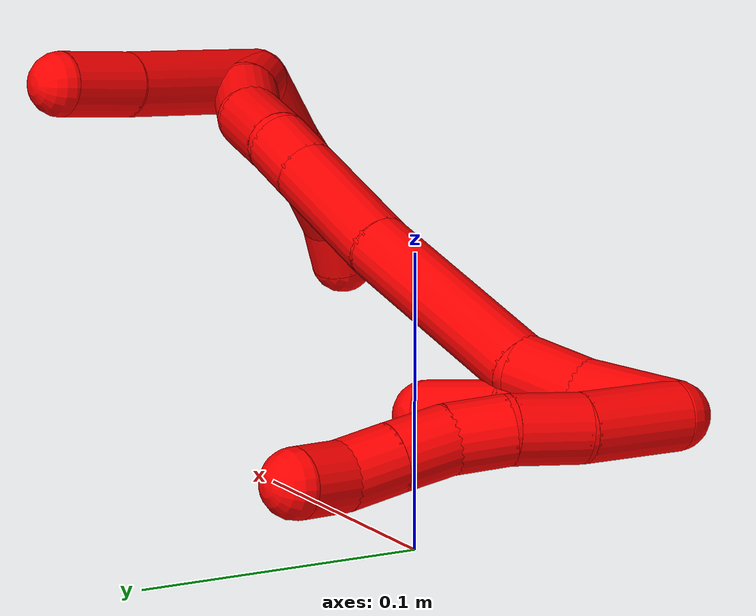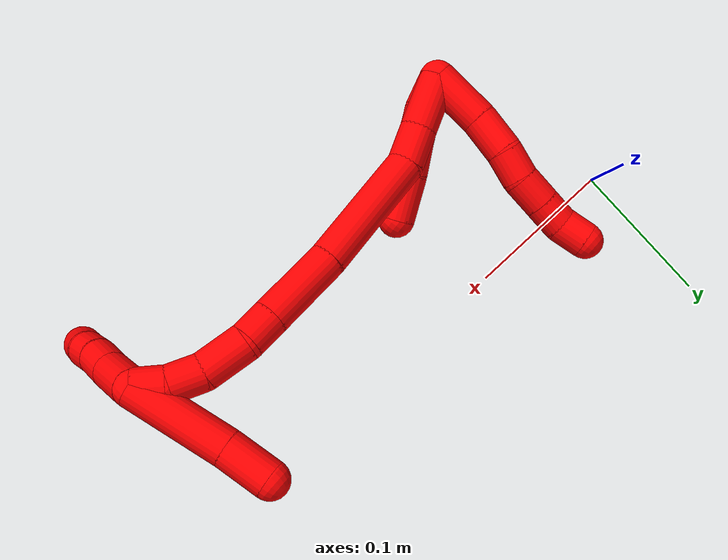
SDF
<sdf version="1.7">
 <world name="default">
  <model name="2">
   <static>0</static>
   <link name="2">
    <collision name="collision-cylinder-e_1_2_8">
     <pose>0.000974 -0.001153 -0.019559 3.08273 0.049694 1.40224</pose>
     <geometry><cylinder><radius>0.0125</radius><length>0.039233</length></cylinder></geometry>
     <surface>
      <friction><ode><mu>1.16</mu><mu2>1.16</mu2><slip1>0</slip1><slip2>0</slip2></ode></friction>
      <contact><ode><kp>1e+06</kp><kd>1</kd><max_vel>0</max_vel><min_depth>0.001</min_depth></ode></contact>
     </surface>
    </collision>
    <visual name="visual-cylinder-e_1_2_8">
     <pose>0.000974 -0.001153 -0.019559 3.08273 0.049694 1.40224</pose>
     <geometry><cylinder><radius>0.0125</radius><length>0.039233</length></cylinder></geometry>
     <material><ambient>1 0 0 1</ambient></material>
    </visual>
    <collision name="collision-cylinder-e_2_8_9">
     <pose>0.004702 -0.002875 -0.052512 3.0991 0.202523 2.72928</pose>
     <geometry><cylinder><radius>0.0125</radius><length>0.027374</length></cylinder></geometry>
     <surface>
      <friction><ode><mu>1.16</mu><mu2>1.16</mu2><slip1>0</slip1><slip2>0</slip2></ode></friction>
      <contact><ode><kp>1e+06</kp><kd>1</kd><max_vel>0</max_vel><min_depth>0.001</min_depth></ode></contact>
     </surface>
    </collision>
    <visual name="visual-cylinder-e_2_8_9">
     <pose>0.004702 -0.002875 -0.052512 3.0991 0.202523 2.72928</pose>
     <geometry><cylinder><radius>0.0125</radius><length>0.027374</length></cylinder></geometry>
     <material><ambient>1 0 0 1</ambient></material>
    </visual>
    <collision name="collision-cylinder-e_3_9_10">
     <pose>0.010183 -0.005819 -0.076003 2.91055 0.257233 1.67905</pose>
     <geometry><cylinder><radius>0.0125</radius><length>0.021448</length></cylinder></geometry>
     <surface>
      <friction><ode><mu>1.16</mu><mu2>1.16</mu2><slip1>0</slip1><slip2>0</slip2></ode></friction>
      <contact><ode><kp>1e+06</kp><kd>1</kd><max_vel>0</max_vel><min_depth>0.001</min_depth></ode></contact>
     </surface>
    </collision>
    <visual name="visual-cylinder-e_3_9_10">
     <pose>0.010183 -0.005819 -0.076003 2.91055 0.257233 1.67905</pose>
     <geometry><cylinder><radius>0.0125</radius><length>0.021448</length></cylinder></geometry>
     <material><ambient>1 0 0 1</ambient></material>
    </visual>
    <collision name="collision-cylinder-e_4_10_11">
     <pose>0.013217 -0.010912 -0.096619 2.88878 0.02812 0.220388</pose>
     <geometry><cylinder><radius>0.0125</radius><length>0.02174</length></cylinder></geometry>
     <surface>
      <friction><ode><mu>1.16</mu><mu2>1.16</mu2><slip1>0</slip1><slip2>0</slip2></ode></friction>
      <contact><ode><kp>1e+06</kp><kd>1</kd><max_vel>0</max_vel><min_depth>0.001</min_depth></ode></contact>
     </surface>
    </collision>
    <visual name="visual-cylinder-e_4_10_11">
     <pose>0.013217 -0.010912 -0.096619 2.88878 0.02812 0.220388</pose>
     <geometry><cylinder><radius>0.0125</radius><length>0.02174</length></cylinder></geometry>
     <material><ambient>1 0 0 1</ambient></material>
    </visual>
    <collision name="collision-cylinder-e_5_11_12">
     <pose>0.013751 -0.016299 -0.116855 2.87346 0.02267 0.167689</pose>
     <geometry><cylinder><radius>0.0125</radius><length>0.020157</length></cylinder></geometry>
     <surface>
      <friction><ode><mu>1.16</mu><mu2>1.16</mu2><slip1>0</slip1><slip2>0</slip2></ode></friction>
      <contact><ode><kp>1e+06</kp><kd>1</kd><max_vel>0</max_vel><min_depth>0.001</min_depth></ode></contact>
     </surface>
    </collision>
    <visual name="visual-cylinder-e_5_11_12">
     <pose>0.013751 -0.016299 -0.116855 2.87346 0.02267 0.167689</pose>
     <geometry><cylinder><radius>0.0125</radius><length>0.020157</length></cylinder></geometry>
     <material><ambient>1 0 0 1</ambient></material>
    </visual>
    <collision name="collision-cylinder-e_6_12_6">
     <pose>0.012825 -0.018709 -0.136525 -3.11551 -0.115426 2.69758</pose>
     <geometry><cylinder><radius>0.0125</radius><length>0.020047</length></cylinder></geometry>
     <surface>
      <friction><ode><mu>1.16</mu><mu2>1.16</mu2><slip1>0</slip1><slip2>0</slip2></ode></friction>
      <contact><ode><kp>1e+06</kp><kd>1</kd><max_vel>0</max_vel><min_depth>0.001</min_depth></ode></contact>
     </surface>
    </collision>
    <visual name="visual-cylinder-e_6_12_6">
     <pose>0.012825 -0.018709 -0.136525 -3.11551 -0.115426 2.69758</pose>
     <geometry><cylinder><radius>0.0125</radius><length>0.020047</length></cylinder></geometry>
     <material><ambient>1 0 0 1</ambient></material>
    </visual>
    <collision name="collision-cylinder-e_1_2_13">
     <pose>0.009349 -0.005929 -0.002731 2.00237 0.961268 1.36665</pose>
     <geometry><cylinder><radius>0.0125</radius><length>0.022805</length></cylinder></geometry>
     <surface>
      <friction><ode><mu>1.16</mu><mu2>1.16</mu2><slip1>0</slip1><slip2>0</slip2></ode></friction>
      <contact><ode><kp>1e+06</kp><kd>1</kd><max_vel>0</max_vel><min_depth>0.001</min_depth></ode></contact>
     </surface>
    </collision>
    <visual name="visual-cylinder-e_1_2_13">
     <pose>0.009349 -0.005929 -0.002731 2.00237 0.961268 1.36665</pose>
     <geometry><cylinder><radius>0.0125</radius><length>0.022805</length></cylinder></geometry>
     <material><ambient>1 0 0 1</ambient></material>
    </visual>
    <collision name="collision-cylinder-e_2_13_14">
     <pose>0.027716 -0.015461 -0.010474 2.51845 0.970464 2.04495</pose>
     <geometry><cylinder><radius>0.0125</radius><length>0.021857</length></cylinder></geometry>
     <surface>
      <friction><ode><mu>1.16</mu><mu2>1.16</mu2><slip1>0</slip1><slip2>0</slip2></ode></friction>
      <contact><ode><kp>1e+06</kp><kd>1</kd><max_vel>0</max_vel><min_depth>0.001</min_depth></ode></contact>
     </surface>
    </collision>
    <visual name="visual-cylinder-e_2_13_14">
     <pose>0.027716 -0.015461 -0.010474 2.51845 0.970464 2.04495</pose>
     <geometry><cylinder><radius>0.0125</radius><length>0.021857</length></cylinder></geometry>
     <material><ambient>1 0 0 1</ambient></material>
    </visual>
    <collision name="collision-cylinder-e_3_14_15">
     <pose>0.046125 -0.022925 -0.02124 2.55051 0.93522 2.05645</pose>
     <geometry><cylinder><radius>0.0125</radius><length>0.023342</length></cylinder></geometry>
     <surface>
      <friction><ode><mu>1.16</mu><mu2>1.16</mu2><slip1>0</slip1><slip2>0</slip2></ode></friction>
      <contact><ode><kp>1e+06</kp><kd>1</kd><max_vel>0</max_vel><min_depth>0.001</min_depth></ode></contact>
     </surface>
    </collision>
    <visual name="visual-cylinder-e_3_14_15">
     <pose>0.046125 -0.022925 -0.02124 2.55051 0.93522 2.05645</pose>
     <geometry><cylinder><radius>0.0125</radius><length>0.023342</length></cylinder></geometry>
     <material><ambient>1 0 0 1</ambient></material>
    </visual>
    <collision name="collision-cylinder-e_4_15_5">
     <pose>0.068607 -0.033113 -0.03367 2.38307 0.958257 1.83278</pose>
     <geometry><cylinder><radius>0.0125</radius><length>0.031996</length></cylinder></geometry>
     <surface>
      <friction><ode><mu>1.16</mu><mu2>1.16</mu2><slip1>0</slip1><slip2>0</slip2></ode></friction>
      <contact><ode><kp>1e+06</kp><kd>1</kd><max_vel>0</max_vel><min_depth>0.001</min_depth></ode></contact>
     </surface>
    </collision>
    <visual name="visual-cylinder-e_4_15_5">
     <pose>0.068607 -0.033113 -0.03367 2.38307 0.958257 1.83278</pose>
     <geometry><cylinder><radius>0.0125</radius><length>0.031996</length></cylinder></geometry>
     <material><ambient>1 0 0 1</ambient></material>
    </visual>
    <collision name="collision-cylinder-e_1_2_16">
     <pose>0.017 -0.003996 -0.006508 2.59094 1.14862 2.31831</pose>
     <geometry><cylinder><radius>0.0125</radius><length>0.037274</length></cylinder></geometry>
     <surface>
      <friction><ode><mu>1.16</mu><mu2>1.16</mu2><slip1>0</slip1><slip2>0</slip2></ode></friction>
      <contact><ode><kp>1e+06</kp><kd>1</kd><max_vel>0</max_vel><min_depth>0.001</min_depth></ode></contact>
     </surface>
    </collision>
    <visual name="visual-cylinder-e_1_2_16">
     <pose>0.017 -0.003996 -0.006508 2.59094 1.14862 2.31831</pose>
     <geometry><cylinder><radius>0.0125</radius><length>0.037274</length></cylinder></geometry>
     <material><ambient>1 0 0 1</ambient></material>
    </visual>
    <collision name="collision-cylinder-e_2_16_17">
     <pose>0.046475 -0.009094 -0.017863 2.91794 1.19157 2.8133</pose>
     <geometry><cylinder><radius>0.0125</radius><length>0.026857</length></cylinder></geometry>
     <surface>
      <friction><ode><mu>1.16</mu><mu2>1.16</mu2><slip1>0</slip1><slip2>0</slip2></ode></friction>
      <contact><ode><kp>1e+06</kp><kd>1</kd><max_vel>0</max_vel><min_depth>0.001</min_depth></ode></contact>
     </surface>
    </collision>
    <visual name="visual-cylinder-e_2_16_17">
     <pose>0.046475 -0.009094 -0.017863 2.91794 1.19157 2.8133</pose>
     <geometry><cylinder><radius>0.0125</radius><length>0.026857</length></cylinder></geometry>
     <material><ambient>1 0 0 1</ambient></material>
    </visual>
    <collision name="collision-cylinder-e_3_17_18">
     <pose>0.10181 -0.00763 -0.025689 -2.43045 1.47931 -2.36857</pose>
     <geometry><cylinder><radius>0.0125</radius><length>0.08608</length></cylinder></geometry>
     <surface>
      <friction><ode><mu>1.16</mu><mu2>1.16</mu2><slip1>0</slip1><slip2>0</slip2></ode></friction>
      <contact><ode><kp>1e+06</kp><kd>1</kd><max_vel>0</max_vel><min_depth>0.001</min_depth></ode></contact>
     </surface>
    </collision>
    <visual name="visual-cylinder-e_3_17_18">
     <pose>0.10181 -0.00763 -0.025689 -2.43045 1.47931 -2.36857</pose>
     <geometry><cylinder><radius>0.0125</radius><length>0.08608</length></cylinder></geometry>
     <material><ambient>1 0 0 1</ambient></material>
    </visual>
    <collision name="collision-cylinder-e_4_18_19">
     <pose>0.171159 -0.002875 -0.028184 -1.35343 1.48638 -1.27174</pose>
     <geometry><cylinder><radius>0.0125</radius><length>0.053167</length></cylinder></geometry>
     <surface>
      <friction><ode><mu>1.16</mu><mu2>1.16</mu2><slip1>0</slip1><slip2>0</slip2></ode></friction>
      <contact><ode><kp>1e+06</kp><kd>1</kd><max_vel>0</max_vel><min_depth>0.001</min_depth></ode></contact>
     </surface>
    </collision>
    <visual name="visual-cylinder-e_4_18_19">
     <pose>0.171159 -0.002875 -0.028184 -1.35343 1.48638 -1.27174</pose>
     <geometry><cylinder><radius>0.0125</radius><length>0.053167</length></cylinder></geometry>
     <material><ambient>1 0 0 1</ambient></material>
    </visual>
    <collision name="collision-cylinder-e_5_19_20">
     <pose>0.208388 0.000268 -0.027485 -1.34875 1.47992 -1.26097</pose>
     <geometry><cylinder><radius>0.0125</radius><length>0.02157</length></cylinder></geometry>
     <surface>
      <friction><ode><mu>1.16</mu><mu2>1.16</mu2><slip1>0</slip1><slip2>0</slip2></ode></friction>
      <contact><ode><kp>1e+06</kp><kd>1</kd><max_vel>0</max_vel><min_depth>0.001</min_depth></ode></contact>
     </surface>
    </collision>
    <visual name="visual-cylinder-e_5_19_20">
     <pose>0.208388 0.000268 -0.027485 -1.34875 1.47992 -1.26097</pose>
     <geometry><cylinder><radius>0.0125</radius><length>0.02157</length></cylinder></geometry>
     <material><ambient>1 0 0 1</ambient></material>
    </visual>
    <collision name="collision-cylinder-e_6_20_21">
     <pose>0.234304 -0.000648 -0.023906 0.507717 1.32239 0.398373</pose>
     <geometry><cylinder><radius>0.0125</radius><length>0.031312</length></cylinder></geometry>
     <surface>
      <friction><ode><mu>1.16</mu><mu2>1.16</mu2><slip1>0</slip1><slip2>0</slip2></ode></friction>
      <contact><ode><kp>1e+06</kp><kd>1</kd><max_vel>0</max_vel><min_depth>0.001</min_depth></ode></contact>
     </surface>
    </collision>
    <visual name="visual-cylinder-e_6_20_21">
     <pose>0.234304 -0.000648 -0.023906 0.507717 1.32239 0.398373</pose>
     <geometry><cylinder><radius>0.0125</radius><length>0.031312</length></cylinder></geometry>
     <material><ambient>1 0 0 1</ambient></material>
    </visual>
    <collision name="collision-cylinder-e_7_21_22">
     <pose>0.259513 -0.002452 -0.015374 -0.013074 1.09507 -0.007971</pose>
     <geometry><cylinder><radius>0.0125</radius><length>0.022576</length></cylinder></geometry>
     <surface>
      <friction><ode><mu>1.16</mu><mu2>1.16</mu2><slip1>0</slip1><slip2>0</slip2></ode></friction>
      <contact><ode><kp>1e+06</kp><kd>1</kd><max_vel>0</max_vel><min_depth>0.001</min_depth></ode></contact>
     </surface>
    </collision>
    <visual name="visual-cylinder-e_7_21_22">
     <pose>0.259513 -0.002452 -0.015374 -0.013074 1.09507 -0.007971</pose>
     <geometry><cylinder><radius>0.0125</radius><length>0.022576</length></cylinder></geometry>
     <material><ambient>1 0 0 1</ambient></material>
    </visual>
    <collision name="collision-cylinder-e_8_22_1">
     <pose>0.277078 -0.003555 -0.002861 0.158038 0.791713 0.066161</pose>
     <geometry><cylinder><radius>0.0125</radius><length>0.021165</length></cylinder></geometry>
     <surface>
      <friction><ode><mu>1.16</mu><mu2>1.16</mu2><slip1>0</slip1><slip2>0</slip2></ode></friction>
      <contact><ode><kp>1e+06</kp><kd>1</kd><max_vel>0</max_vel><min_depth>0.001</min_depth></ode></contact>
     </surface>
    </collision>
    <visual name="visual-cylinder-e_8_22_1">
     <pose>0.277078 -0.003555 -0.002861 0.158038 0.791713 0.066161</pose>
     <geometry><cylinder><radius>0.0125</radius><length>0.021165</length></cylinder></geometry>
     <material><ambient>1 0 0 1</ambient></material>
    </visual>
    <collision name="collision-cylinder-e_1_1_23">
     <pose>0.27934 -0.00147 -0.029133 -3.04507 -0.154739 2.02728</pose>
     <geometry><cylinder><radius>0.0125</radius><length>0.068361</length></cylinder></geometry>
     <surface>
      <friction><ode><mu>1.16</mu><mu2>1.16</mu2><slip1>0</slip1><slip2>0</slip2></ode></friction>
      <contact><ode><kp>1e+06</kp><kd>1</kd><max_vel>0</max_vel><min_depth>0.001</min_depth></ode></contact>
     </surface>
    </collision>
    <visual name="visual-cylinder-e_1_1_23">
     <pose>0.27934 -0.00147 -0.029133 -3.04507 -0.154739 2.02728</pose>
     <geometry><cylinder><radius>0.0125</radius><length>0.068361</length></cylinder></geometry>
     <material><ambient>1 0 0 1</ambient></material>
    </visual>
    <collision name="collision-cylinder-e_2_23_4">
     <pose>0.272626 0.003268 -0.078431 -3.04725 -0.091579 1.54099</pose>
     <geometry><cylinder><radius>0.0125</radius><length>0.031639</length></cylinder></geometry>
     <surface>
      <friction><ode><mu>1.16</mu><mu2>1.16</mu2><slip1>0</slip1><slip2>0</slip2></ode></friction>
      <contact><ode><kp>1e+06</kp><kd>1</kd><max_vel>0</max_vel><min_depth>0.001</min_depth></ode></contact>
     </surface>
    </collision>
    <visual name="visual-cylinder-e_2_23_4">
     <pose>0.272626 0.003268 -0.078431 -3.04725 -0.091579 1.54099</pose>
     <geometry><cylinder><radius>0.0125</radius><length>0.031639</length></cylinder></geometry>
     <material><ambient>1 0 0 1</ambient></material>
    </visual>
    <collision name="collision-cylinder-e_1_1_24">
     <pose>0.28407 -0.018388 0.015063 0.911809 -0.031109 -0.015255</pose>
     <geometry><cylinder><radius>0.0125</radius><length>0.03458</length></cylinder></geometry>
     <surface>
      <friction><ode><mu>1.16</mu><mu2>1.16</mu2><slip1>0</slip1><slip2>0</slip2></ode></friction>
      <contact><ode><kp>1e+06</kp><kd>1</kd><max_vel>0</max_vel><min_depth>0.001</min_depth></ode></contact>
     </surface>
    </collision>
    <visual name="visual-cylinder-e_1_1_24">
     <pose>0.28407 -0.018388 0.015063 0.911809 -0.031109 -0.015255</pose>
     <geometry><cylinder><radius>0.0125</radius><length>0.03458</length></cylinder></geometry>
     <material><ambient>1 0 0 1</ambient></material>
    </visual>
    <collision name="collision-cylinder-e_2_24_25">
     <pose>0.282647 -0.041494 0.033959 0.848864 -0.070277 -0.031769</pose>
     <geometry><cylinder><radius>0.0125</radius><length>0.025225</length></cylinder></geometry>
     <surface>
      <friction><ode><mu>1.16</mu><mu2>1.16</mu2><slip1>0</slip1><slip2>0</slip2></ode></friction>
      <contact><ode><kp>1e+06</kp><kd>1</kd><max_vel>0</max_vel><min_depth>0.001</min_depth></ode></contact>
     </surface>
    </collision>
    <visual name="visual-cylinder-e_2_24_25">
     <pose>0.282647 -0.041494 0.033959 0.848864 -0.070277 -0.031769</pose>
     <geometry><cylinder><radius>0.0125</radius><length>0.025225</length></cylinder></geometry>
     <material><ambient>1 0 0 1</ambient></material>
    </visual>
    <collision name="collision-cylinder-e_3_25_26">
     <pose>0.281917 -0.058945 0.048419 0.916249 0.015388 0.007588</pose>
     <geometry><cylinder><radius>0.0125</radius><length>0.020192</length></cylinder></geometry>
     <surface>
      <friction><ode><mu>1.16</mu><mu2>1.16</mu2><slip1>0</slip1><slip2>0</slip2></ode></friction>
      <contact><ode><kp>1e+06</kp><kd>1</kd><max_vel>0</max_vel><min_depth>0.001</min_depth></ode></contact>
     </surface>
    </collision>
    <visual name="visual-cylinder-e_3_25_26">
     <pose>0.281917 -0.058945 0.048419 0.916249 0.015388 0.007588</pose>
     <geometry><cylinder><radius>0.0125</radius><length>0.020192</length></cylinder></geometry>
     <material><ambient>1 0 0 1</ambient></material>
    </visual>
    <collision name="collision-cylinder-e_4_26_3">
     <pose>0.281334 -0.075972 0.058825 1.12946 -0.07386 -0.046808</pose>
     <geometry><cylinder><radius>0.0125</radius><length>0.020003</length></cylinder></geometry>
     <surface>
      <friction><ode><mu>1.16</mu><mu2>1.16</mu2><slip1>0</slip1><slip2>0</slip2></ode></friction>
      <contact><ode><kp>1e+06</kp><kd>1</kd><max_vel>0</max_vel><min_depth>0.001</min_depth></ode></contact>
     </surface>
    </collision>
    <visual name="visual-cylinder-e_4_26_3">
     <pose>0.281334 -0.075972 0.058825 1.12946 -0.07386 -0.046808</pose>
     <geometry><cylinder><radius>0.0125</radius><length>0.020003</length></cylinder></geometry>
     <material><ambient>1 0 0 1</ambient></material>
    </visual>
    <collision name="collision-sphere-3">
     <pose>0.280596 -0.08499 0.063086 0 -0 0</pose>
     <geometry><sphere><radius>0.0125</radius></sphere></geometry>
     <surface>
      <friction><ode><mu>1.16</mu><mu2>1.16</mu2><slip1>0</slip1><slip2>0</slip2></ode></friction>
      <contact><ode><kp>1e+06</kp><kd>1</kd><max_vel>0</max_vel><min_depth>0.001</min_depth></ode></contact>
     </surface>
    </collision>
    <visual name="visual-sphere-3">
     <pose>0.280596 -0.08499 0.063086 0 -0 0</pose>
     <geometry><sphere><radius>0.0125</radius></sphere></geometry>
     <material><ambient>1 0 0 1</ambient></material>
    </visual>
    <collision name="collision-sphere-26">
     <pose>0.282072 -0.066953 0.054565 0 -0 0</pose>
     <geometry><sphere><radius>0.0125</radius></sphere></geometry>
     <surface>
      <friction><ode><mu>1.16</mu><mu2>1.16</mu2><slip1>0</slip1><slip2>0</slip2></ode></friction>
      <contact><ode><kp>1e+06</kp><kd>1</kd><max_vel>0</max_vel><min_depth>0.001</min_depth></ode></contact>
     </surface>
    </collision>
    <visual name="visual-sphere-26">
     <pose>0.282072 -0.066953 0.054565 0 -0 0</pose>
     <geometry><sphere><radius>0.0125</radius></sphere></geometry>
     <material><ambient>1 0 0 1</ambient></material>
    </visual>
    <collision name="collision-sphere-25">
     <pose>0.281761 -0.050936 0.042274 0 -0 0</pose>
     <geometry><sphere><radius>0.0125</radius></sphere></geometry>
     <surface>
      <friction><ode><mu>1.16</mu><mu2>1.16</mu2><slip1>0</slip1><slip2>0</slip2></ode></friction>
      <contact><ode><kp>1e+06</kp><kd>1</kd><max_vel>0</max_vel><min_depth>0.001</min_depth></ode></contact>
     </surface>
    </collision>
    <visual name="visual-sphere-25">
     <pose>0.281761 -0.050936 0.042274 0 -0 0</pose>
     <geometry><sphere><radius>0.0125</radius></sphere></geometry>
     <material><ambient>1 0 0 1</ambient></material>
    </visual>
    <collision name="collision-sphere-24">
     <pose>0.283533 -0.032051 0.025645 0 -0 0</pose>
     <geometry><sphere><radius>0.0125</radius></sphere></geometry>
     <surface>
      <friction><ode><mu>1.16</mu><mu2>1.16</mu2><slip1>0</slip1><slip2>0</slip2></ode></friction>
      <contact><ode><kp>1e+06</kp><kd>1</kd><max_vel>0</max_vel><min_depth>0.001</min_depth></ode></contact>
     </surface>
    </collision>
    <visual name="visual-sphere-24">
     <pose>0.283533 -0.032051 0.025645 0 -0 0</pose>
     <geometry><sphere><radius>0.0125</radius></sphere></geometry>
     <material><ambient>1 0 0 1</ambient></material>
    </visual>
    <collision name="collision-sphere-4">
     <pose>0.271179 0.004753 -0.094115 0 -0 0</pose>
     <geometry><sphere><radius>0.0125</radius></sphere></geometry>
     <surface>
      <friction><ode><mu>1.16</mu><mu2>1.16</mu2><slip1>0</slip1><slip2>0</slip2></ode></friction>
      <contact><ode><kp>1e+06</kp><kd>1</kd><max_vel>0</max_vel><min_depth>0.001</min_depth></ode></contact>
     </surface>
    </collision>
    <visual name="visual-sphere-4">
     <pose>0.271179 0.004753 -0.094115 0 -0 0</pose>
     <geometry><sphere><radius>0.0125</radius></sphere></geometry>
     <material><ambient>1 0 0 1</ambient></material>
    </visual>
    <collision name="collision-sphere-23">
     <pose>0.274072 0.001784 -0.062748 0 -0 0</pose>
     <geometry><sphere><radius>0.0125</radius></sphere></geometry>
     <surface>
      <friction><ode><mu>1.16</mu><mu2>1.16</mu2><slip1>0</slip1><slip2>0</slip2></ode></friction>
      <contact><ode><kp>1e+06</kp><kd>1</kd><max_vel>0</max_vel><min_depth>0.001</min_depth></ode></contact>
     </surface>
    </collision>
    <visual name="visual-sphere-23">
     <pose>0.274072 0.001784 -0.062748 0 -0 0</pose>
     <geometry><sphere><radius>0.0125</radius></sphere></geometry>
     <material><ambient>1 0 0 1</ambient></material>
    </visual>
    <collision name="collision-sphere-1">
     <pose>0.284608 -0.004725 0.004481 0 -0 0</pose>
     <geometry><sphere><radius>0.0125</radius></sphere></geometry>
     <surface>
      <friction><ode><mu>1.16</mu><mu2>1.16</mu2><slip1>0</slip1><slip2>0</slip2></ode></friction>
      <contact><ode><kp>1e+06</kp><kd>1</kd><max_vel>0</max_vel><min_depth>0.001</min_depth></ode></contact>
     </surface>
    </collision>
    <visual name="visual-sphere-1">
     <pose>0.284608 -0.004725 0.004481 0 -0 0</pose>
     <geometry><sphere><radius>0.0125</radius></sphere></geometry>
     <material><ambient>1 0 0 1</ambient></material>
    </visual>
    <collision name="collision-sphere-22">
     <pose>0.269548 -0.002384 -0.010204 0 -0 0</pose>
     <geometry><sphere><radius>0.0125</radius></sphere></geometry>
     <surface>
      <friction><ode><mu>1.16</mu><mu2>1.16</mu2><slip1>0</slip1><slip2>0</slip2></ode></friction>
      <contact><ode><kp>1e+06</kp><kd>1</kd><max_vel>0</max_vel><min_depth>0.001</min_depth></ode></contact>
     </surface>
    </collision>
    <visual name="visual-sphere-22">
     <pose>0.269548 -0.002384 -0.010204 0 -0 0</pose>
     <geometry><sphere><radius>0.0125</radius></sphere></geometry>
     <material><ambient>1 0 0 1</ambient></material>
    </visual>
    <collision name="collision-sphere-21">
     <pose>0.249479 -0.002519 -0.020543 0 -0 0</pose>
     <geometry><sphere><radius>0.0125</radius></sphere></geometry>
     <surface>
      <friction><ode><mu>1.16</mu><mu2>1.16</mu2><slip1>0</slip1><slip2>0</slip2></ode></friction>
      <contact><ode><kp>1e+06</kp><kd>1</kd><max_vel>0</max_vel><min_depth>0.001</min_depth></ode></contact>
     </surface>
    </collision>
    <visual name="visual-sphere-21">
     <pose>0.249479 -0.002519 -0.020543 0 -0 0</pose>
     <geometry><sphere><radius>0.0125</radius></sphere></geometry>
     <material><ambient>1 0 0 1</ambient></material>
    </visual>
    <collision name="collision-sphere-12">
     <pose>0.01398 -0.018969 -0.126571 0 -0 0</pose>
     <geometry><sphere><radius>0.0125</radius></sphere></geometry>
     <surface>
      <friction><ode><mu>1.16</mu><mu2>1.16</mu2><slip1>0</slip1><slip2>0</slip2></ode></friction>
      <contact><ode><kp>1e+06</kp><kd>1</kd><max_vel>0</max_vel><min_depth>0.001</min_depth></ode></contact>
     </surface>
    </collision>
    <visual name="visual-sphere-12">
     <pose>0.01398 -0.018969 -0.126571 0 -0 0</pose>
     <geometry><sphere><radius>0.0125</radius></sphere></geometry>
     <material><ambient>1 0 0 1</ambient></material>
    </visual>
    <collision name="collision-sphere-11">
     <pose>0.013523 -0.01363 -0.107139 0 -0 0</pose>
     <geometry><sphere><radius>0.0125</radius></sphere></geometry>
     <surface>
      <friction><ode><mu>1.16</mu><mu2>1.16</mu2><slip1>0</slip1><slip2>0</slip2></ode></friction>
      <contact><ode><kp>1e+06</kp><kd>1</kd><max_vel>0</max_vel><min_depth>0.001</min_depth></ode></contact>
     </surface>
    </collision>
    <visual name="visual-sphere-11">
     <pose>0.013523 -0.01363 -0.107139 0 -0 0</pose>
     <geometry><sphere><radius>0.0125</radius></sphere></geometry>
     <material><ambient>1 0 0 1</ambient></material>
    </visual>
    <collision name="collision-sphere-10">
     <pose>0.012911 -0.008194 -0.086099 0 -0 0</pose>
     <geometry><sphere><radius>0.0125</radius></sphere></geometry>
     <surface>
      <friction><ode><mu>1.16</mu><mu2>1.16</mu2><slip1>0</slip1><slip2>0</slip2></ode></friction>
      <contact><ode><kp>1e+06</kp><kd>1</kd><max_vel>0</max_vel><min_depth>0.001</min_depth></ode></contact>
     </surface>
    </collision>
    <visual name="visual-sphere-10">
     <pose>0.012911 -0.008194 -0.086099 0 -0 0</pose>
     <geometry><sphere><radius>0.0125</radius></sphere></geometry>
     <material><ambient>1 0 0 1</ambient></material>
    </visual>
    <collision name="collision-sphere-9">
     <pose>0.007455 -0.003444 -0.065907 0 -0 0</pose>
     <geometry><sphere><radius>0.0125</radius></sphere></geometry>
     <surface>
      <friction><ode><mu>1.16</mu><mu2>1.16</mu2><slip1>0</slip1><slip2>0</slip2></ode></friction>
      <contact><ode><kp>1e+06</kp><kd>1</kd><max_vel>0</max_vel><min_depth>0.001</min_depth></ode></contact>
     </surface>
    </collision>
    <visual name="visual-sphere-9">
     <pose>0.007455 -0.003444 -0.065907 0 -0 0</pose>
     <geometry><sphere><radius>0.0125</radius></sphere></geometry>
     <material><ambient>1 0 0 1</ambient></material>
    </visual>
    <collision name="collision-sphere-2">
     <geometry><sphere><radius>0.0125</radius></sphere></geometry>
     <surface>
      <friction><ode><mu>1.16</mu><mu2>1.16</mu2><slip1>0</slip1><slip2>0</slip2></ode></friction>
      <contact><ode><kp>1e+06</kp><kd>1</kd><max_vel>0</max_vel><min_depth>0.001</min_depth></ode></contact>
     </surface>
    </collision>
    <visual name="visual-sphere-2">
     <geometry><sphere><radius>0.0125</radius></sphere></geometry>
     <material><ambient>1 0 0 1</ambient></material>
    </visual>
    <collision name="collision-sphere-19">
     <pose>0.197648 -0.000686 -0.027701 0 -0 0</pose>
     <geometry><sphere><radius>0.0125</radius></sphere></geometry>
     <surface>
      <friction><ode><mu>1.16</mu><mu2>1.16</mu2><slip1>0</slip1><slip2>0</slip2></ode></friction>
      <contact><ode><kp>1e+06</kp><kd>1</kd><max_vel>0</max_vel><min_depth>0.001</min_depth></ode></contact>
     </surface>
    </collision>
    <visual name="visual-sphere-19">
     <pose>0.197648 -0.000686 -0.027701 0 -0 0</pose>
     <geometry><sphere><radius>0.0125</radius></sphere></geometry>
     <material><ambient>1 0 0 1</ambient></material>
    </visual>
    <collision name="collision-sphere-8">
     <pose>0.001949 -0.002305 -0.039117 0 -0 0</pose>
     <geometry><sphere><radius>0.0125</radius></sphere></geometry>
     <surface>
      <friction><ode><mu>1.16</mu><mu2>1.16</mu2><slip1>0</slip1><slip2>0</slip2></ode></friction>
      <contact><ode><kp>1e+06</kp><kd>1</kd><max_vel>0</max_vel><min_depth>0.001</min_depth></ode></contact>
     </surface>
    </collision>
    <visual name="visual-sphere-8">
     <pose>0.001949 -0.002305 -0.039117 0 -0 0</pose>
     <geometry><sphere><radius>0.0125</radius></sphere></geometry>
     <material><ambient>1 0 0 1</ambient></material>
    </visual>
    <collision name="collision-sphere-6">
     <pose>0.011671 -0.018449 -0.146478 0 -0 0</pose>
     <geometry><sphere><radius>0.0125</radius></sphere></geometry>
     <surface>
      <friction><ode><mu>1.16</mu><mu2>1.16</mu2><slip1>0</slip1><slip2>0</slip2></ode></friction>
      <contact><ode><kp>1e+06</kp><kd>1</kd><max_vel>0</max_vel><min_depth>0.001</min_depth></ode></contact>
     </surface>
    </collision>
    <visual name="visual-sphere-6">
     <pose>0.011671 -0.018449 -0.146478 0 -0 0</pose>
     <geometry><sphere><radius>0.0125</radius></sphere></geometry>
     <material><ambient>1 0 0 1</ambient></material>
    </visual>
    <collision name="collision-sphere-13">
     <pose>0.018698 -0.011858 -0.005461 0 -0 0</pose>
     <geometry><sphere><radius>0.0125</radius></sphere></geometry>
     <surface>
      <friction><ode><mu>1.16</mu><mu2>1.16</mu2><slip1>0</slip1><slip2>0</slip2></ode></friction>
      <contact><ode><kp>1e+06</kp><kd>1</kd><max_vel>0</max_vel><min_depth>0.001</min_depth></ode></contact>
     </surface>
    </collision>
    <visual name="visual-sphere-13">
     <pose>0.018698 -0.011858 -0.005461 0 -0 0</pose>
     <geometry><sphere><radius>0.0125</radius></sphere></geometry>
     <material><ambient>1 0 0 1</ambient></material>
    </visual>
    <collision name="collision-sphere-14">
     <pose>0.036733 -0.019064 -0.015488 0 -0 0</pose>
     <geometry><sphere><radius>0.0125</radius></sphere></geometry>
     <surface>
      <friction><ode><mu>1.16</mu><mu2>1.16</mu2><slip1>0</slip1><slip2>0</slip2></ode></friction>
      <contact><ode><kp>1e+06</kp><kd>1</kd><max_vel>0</max_vel><min_depth>0.001</min_depth></ode></contact>
     </surface>
    </collision>
    <visual name="visual-sphere-14">
     <pose>0.036733 -0.019064 -0.015488 0 -0 0</pose>
     <geometry><sphere><radius>0.0125</radius></sphere></geometry>
     <material><ambient>1 0 0 1</ambient></material>
    </visual>
    <collision name="collision-sphere-15">
     <pose>0.055517 -0.026786 -0.026993 0 -0 0</pose>
     <geometry><sphere><radius>0.0125</radius></sphere></geometry>
     <surface>
      <friction><ode><mu>1.16</mu><mu2>1.16</mu2><slip1>0</slip1><slip2>0</slip2></ode></friction>
      <contact><ode><kp>1e+06</kp><kd>1</kd><max_vel>0</max_vel><min_depth>0.001</min_depth></ode></contact>
     </surface>
    </collision>
    <visual name="visual-sphere-15">
     <pose>0.055517 -0.026786 -0.026993 0 -0 0</pose>
     <geometry><sphere><radius>0.0125</radius></sphere></geometry>
     <material><ambient>1 0 0 1</ambient></material>
    </visual>
    <collision name="collision-sphere-5">
     <pose>0.081696 -0.03944 -0.040346 0 -0 0</pose>
     <geometry><sphere><radius>0.0125</radius></sphere></geometry>
     <surface>
      <friction><ode><mu>1.16</mu><mu2>1.16</mu2><slip1>0</slip1><slip2>0</slip2></ode></friction>
      <contact><ode><kp>1e+06</kp><kd>1</kd><max_vel>0</max_vel><min_depth>0.001</min_depth></ode></contact>
     </surface>
    </collision>
    <visual name="visual-sphere-5">
     <pose>0.081696 -0.03944 -0.040346 0 -0 0</pose>
     <geometry><sphere><radius>0.0125</radius></sphere></geometry>
     <material><ambient>1 0 0 1</ambient></material>
    </visual>
    <collision name="collision-sphere-16">
     <pose>0.034001 -0.007991 -0.013015 0 -0 0</pose>
     <geometry><sphere><radius>0.0125</radius></sphere></geometry>
     <surface>
      <friction><ode><mu>1.16</mu><mu2>1.16</mu2><slip1>0</slip1><slip2>0</slip2></ode></friction>
      <contact><ode><kp>1e+06</kp><kd>1</kd><max_vel>0</max_vel><min_depth>0.001</min_depth></ode></contact>
     </surface>
    </collision>
    <visual name="visual-sphere-16">
     <pose>0.034001 -0.007991 -0.013015 0 -0 0</pose>
     <geometry><sphere><radius>0.0125</radius></sphere></geometry>
     <material><ambient>1 0 0 1</ambient></material>
    </visual>
    <collision name="collision-sphere-17">
     <pose>0.05895 -0.010196 -0.02271 0 -0 0</pose>
     <geometry><sphere><radius>0.0125</radius></sphere></geometry>
     <surface>
      <friction><ode><mu>1.16</mu><mu2>1.16</mu2><slip1>0</slip1><slip2>0</slip2></ode></friction>
      <contact><ode><kp>1e+06</kp><kd>1</kd><max_vel>0</max_vel><min_depth>0.001</min_depth></ode></contact>
     </surface>
    </collision>
    <visual name="visual-sphere-17">
     <pose>0.05895 -0.010196 -0.02271 0 -0 0</pose>
     <geometry><sphere><radius>0.0125</radius></sphere></geometry>
     <material><ambient>1 0 0 1</ambient></material>
    </visual>
    <collision name="collision-sphere-18">
     <pose>0.14467 -0.005064 -0.028668 0 -0 0</pose>
     <geometry><sphere><radius>0.0125</radius></sphere></geometry>
     <surface>
      <friction><ode><mu>1.16</mu><mu2>1.16</mu2><slip1>0</slip1><slip2>0</slip2></ode></friction>
      <contact><ode><kp>1e+06</kp><kd>1</kd><max_vel>0</max_vel><min_depth>0.001</min_depth></ode></contact>
     </surface>
    </collision>
    <visual name="visual-sphere-18">
     <pose>0.14467 -0.005064 -0.028668 0 -0 0</pose>
     <geometry><sphere><radius>0.0125</radius></sphere></geometry>
     <material><ambient>1 0 0 1</ambient></material>
    </visual>
    <collision name="collision-sphere-20">
     <pose>0.219128 0.001223 -0.02727 0 -0 0</pose>
     <geometry><sphere><radius>0.0125</radius></sphere></geometry>
     <surface>
      <friction><ode><mu>1.16</mu><mu2>1.16</mu2><slip1>0</slip1><slip2>0</slip2></ode></friction>
      <contact><ode><kp>1e+06</kp><kd>1</kd><max_vel>0</max_vel><min_depth>0.001</min_depth></ode></contact>
     </surface>
    </collision>
    <visual name="visual-sphere-20">
     <pose>0.219128 0.001223 -0.02727 0 -0 0</pose>
     <geometry><sphere><radius>0.0125</radius></sphere></geometry>
     <material><ambient>1 0 0 1</ambient></material>
    </visual>
    <inertial>
     <pose>0.139456 -0.011993 -0.026686 0 -0 0</pose>
     <mass>0.75</mass>
     <inertia><ixx>6.4e-05</ixx><ixy>0</ixy><ixz>0</ixz><iyy>0.000146</iyy><iyz>0</iyz><izz>-0.0001</izz></inertia>
    </inertial>
   </link>
   <pose>0.033755 -0.122031 0.023507 1.63273 -0.28788 0.089105</pose>
  </model>
 </world>
</sdf>
